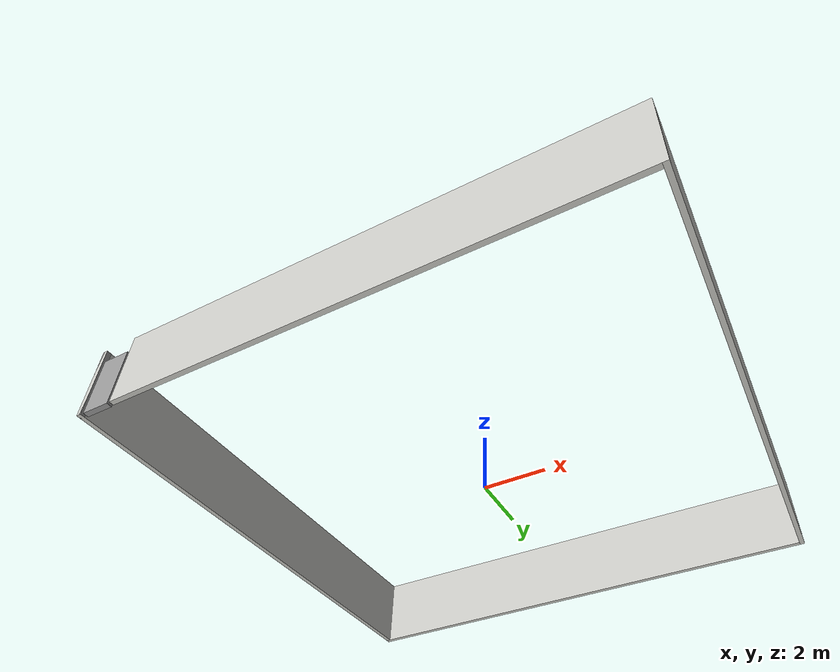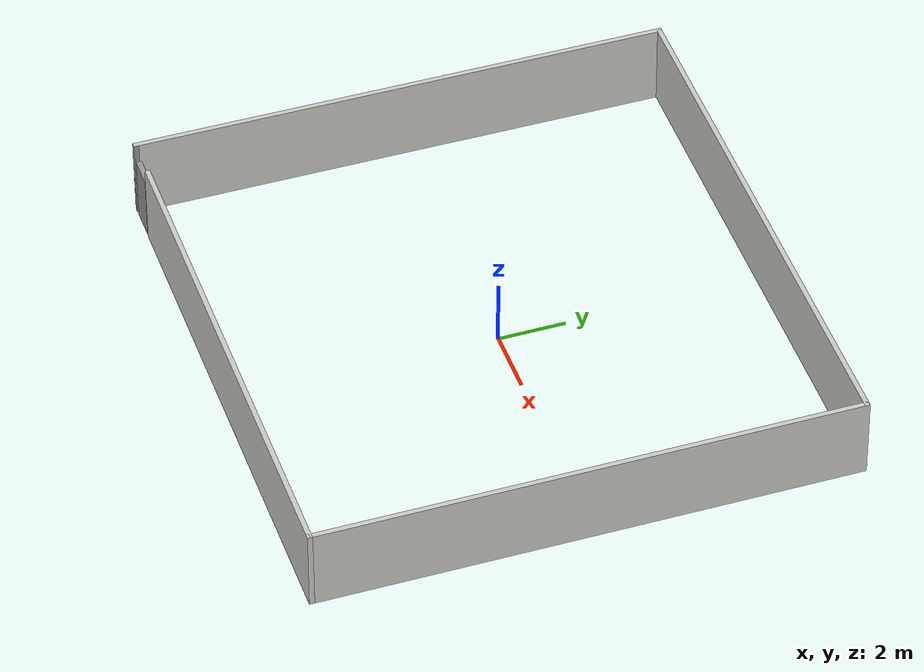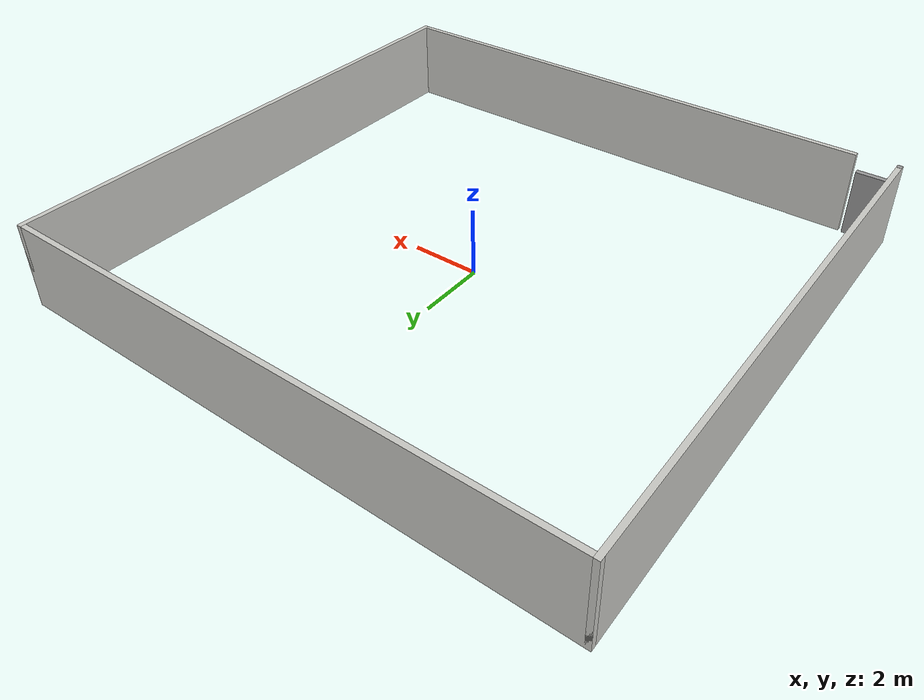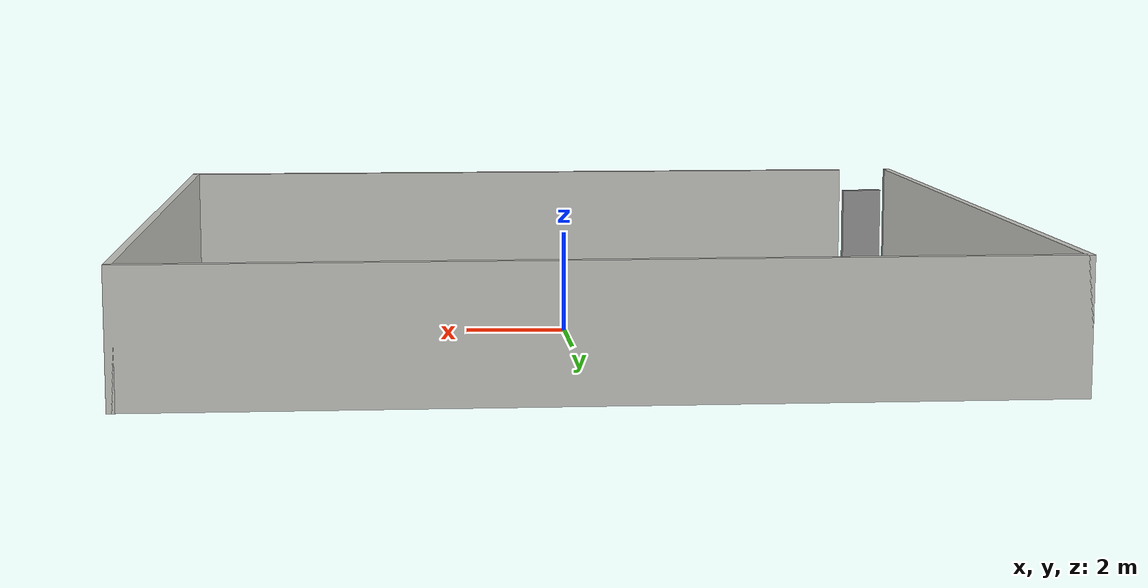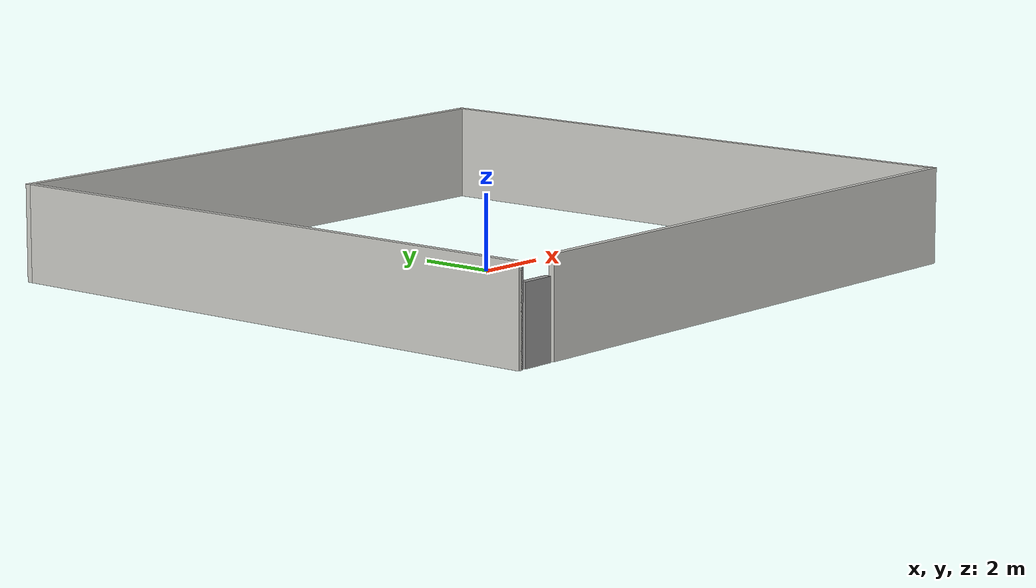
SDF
<?xml version='1.0'?>
<sdf version='1.7'>
  <model name='Digital_showroom'>
    <pose>-0.141007 -0.136396 0 0 -0 0</pose>
    <link name='Door_0'>
      <collision name='Door_0_Collision'>
        <geometry>
          <box>
            <size>0.9 0.17 2</size>
          </box>
        </geometry>
        <pose>0 0 1 0 -0 0</pose>
      </collision>
      <visual name='Door_0_Visual'>
        <pose>0 0 1 0 -0 0</pose>
        <geometry>
          <box>
            <size>0.9 0.17 2</size>
          </box>
        </geometry>
        <material>
          <script>
            <uri>file://media/materials/scripts/gazebo.material</uri>
            <name>Gazebo/Grey</name>
          </script>
        </material>
      </visual>
      <pose>-7.6744 -7.90464 0 0 -0 0</pose>
    </link>
    <link name='Wall_0'>
      <collision name='Wall_0_Collision'>
        <geometry>
          <box>
            <size>16 0.15 2.5</size>
          </box>
        </geometry>
        <pose>0 0 1.25 0 -0 0</pose>
      </collision>
      <visual name='Wall_0_Visual'>
        <pose>0 0 1.25 0 -0 0</pose>
        <geometry>
          <box>
            <size>16 0.15 2.5</size>
          </box>
        </geometry>
        <material>
          <script>
            <uri>file://media/materials/scripts/gazebo.material</uri>
            <name>Gazebo/CeilingTiled</name>
          </script>
          <ambient>1 1 1 1</ambient>
        </material>
        <meta>
          <layer>0</layer>
        </meta>
      </visual>
      <pose>-8.3 -0 0 0 -0 -1.5708</pose>
    </link>
    <link name='Wall_1'>
      <collision name='Wall_1_Collision'>
        <geometry>
          <box>
            <size>0.15 0.15 2.5</size>
          </box>
        </geometry>
        <pose>0 0 1.25 0 -0 0</pose>
      </collision>
      <visual name='Wall_1_Visual'>
        <pose>0 0 1.25 0 -0 0</pose>
        <geometry>
          <box>
            <size>0.15 0.15 2.5</size>
          </box>
        </geometry>
        <material>
          <script>
            <uri>file://media/materials/scripts/gazebo.material</uri>
            <name>Gazebo/Grey</name>
          </script>
          <ambient>1 1 1 1</ambient>
        </material>
        <meta>
          <layer>0</layer>
        </meta>
      </visual>
      <pose>-8.3 -7.925 0 0 -0 0</pose>
    </link>
    <link name='Wall_3'>
      <collision name='Wall_3_Collision'>
        <geometry>
          <box>
            <size>16.75 0.15 2.5</size>
          </box>
        </geometry>
        <pose>0 0 1.25 0 -0 0</pose>
      </collision>
      <visual name='Wall_3_Visual'>
        <pose>0 0 1.25 0 -0 0</pose>
        <geometry>
          <box>
            <size>16.75 0.15 2.5</size>
          </box>
        </geometry>
        <material>
          <script>
            <uri>file://media/materials/scripts/gazebo.material</uri>
            <name>Gazebo/CeilingTiled</name>
          </script>
          <ambient>1 1 1 1</ambient>
        </material>
        <meta>
          <layer>0</layer>
        </meta>
      </visual>
      <pose>-0 7.925 0 0 -0 0</pose>
    </link>
    <link name='Wall_4'>
      <collision name='Wall_4_Collision'>
        <geometry>
          <box>
            <size>16 0.15 2.5</size>
          </box>
        </geometry>
        <pose>0 0 1.25 0 -0 0</pose>
      </collision>
      <visual name='Wall_4_Visual'>
        <pose>0 0 1.25 0 -0 0</pose>
        <geometry>
          <box>
            <size>16 0.15 2.5</size>
          </box>
        </geometry>
        <material>
          <script>
            <uri>file://media/materials/scripts/gazebo.material</uri>
            <name>Gazebo/CeilingTiled</name>
          </script>
          <ambient>1 1 1 1</ambient>
        </material>
        <meta>
          <layer>0</layer>
        </meta>
      </visual>
      <pose>8.3 -0 0 0 -0 -1.5708</pose>
    </link>
    <link name='Wall_5'>
      <collision name='Wall_5_Collision'>
        <geometry>
          <box>
            <size>15.5 0.15 2.5</size>
          </box>
        </geometry>
        <pose>0 0 1.25 0 -0 0</pose>
      </collision>
      <visual name='Wall_5_Visual'>
        <pose>0 0 1.25 0 -0 0</pose>
        <geometry>
          <box>
            <size>15.5 0.15 2.5</size>
          </box>
        </geometry>
        <material>
          <script>
            <uri>file://media/materials/scripts/gazebo.material</uri>
            <name>Gazebo/CeilingTiled</name>
          </script>
          <ambient>1 1 1 1</ambient>
        </material>
        <meta>
          <layer>0</layer>
        </meta>
      </visual>
      <pose>0.625 -7.925 0 0 -0 3.14159</pose>
    </link>
    <static>1</static>
  </model>
</sdf>
